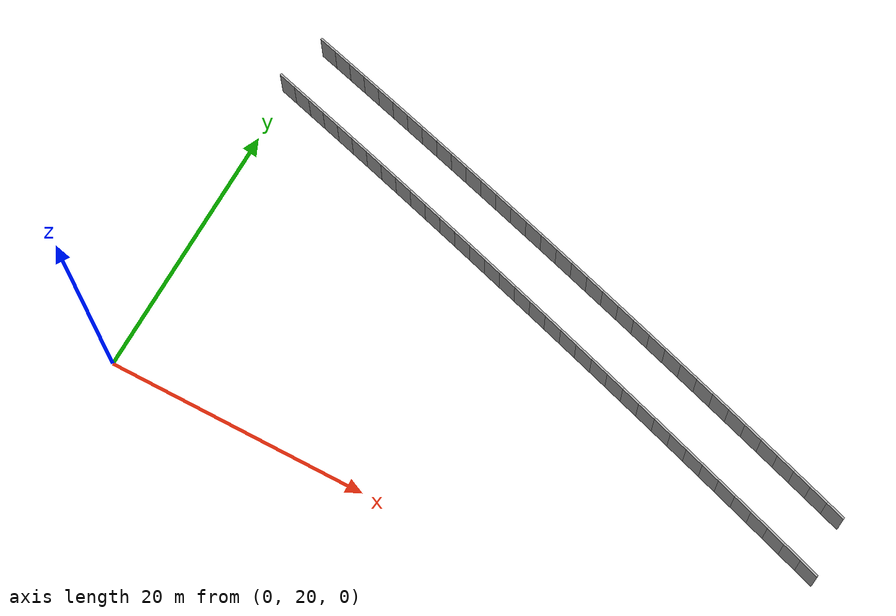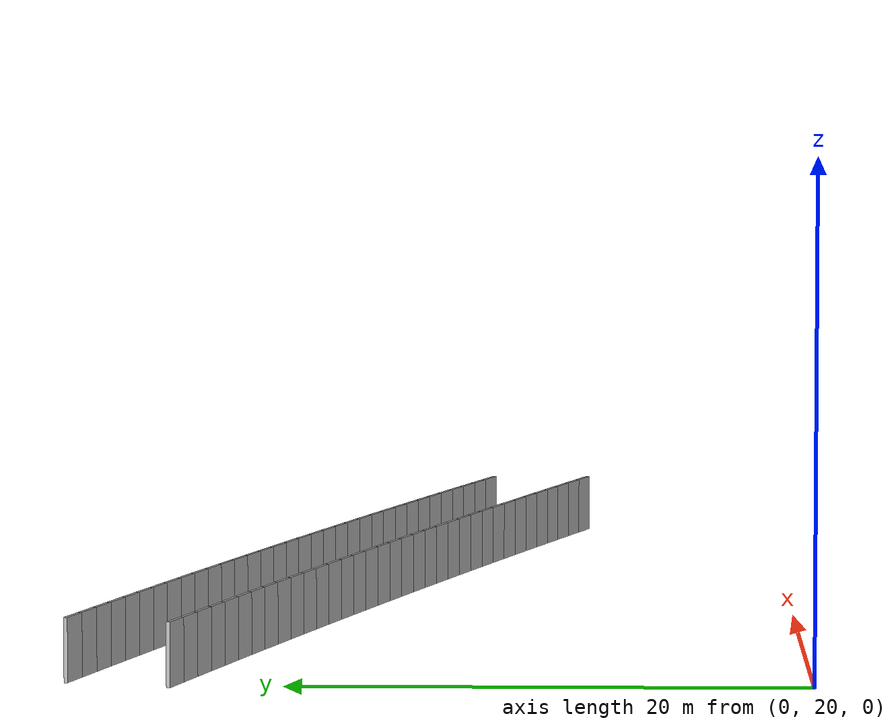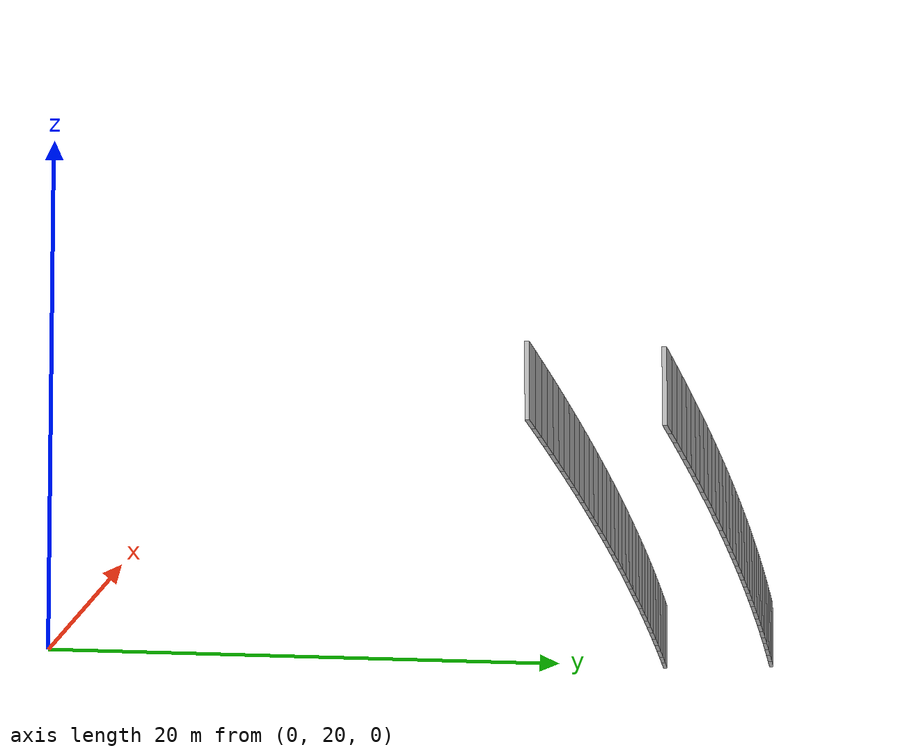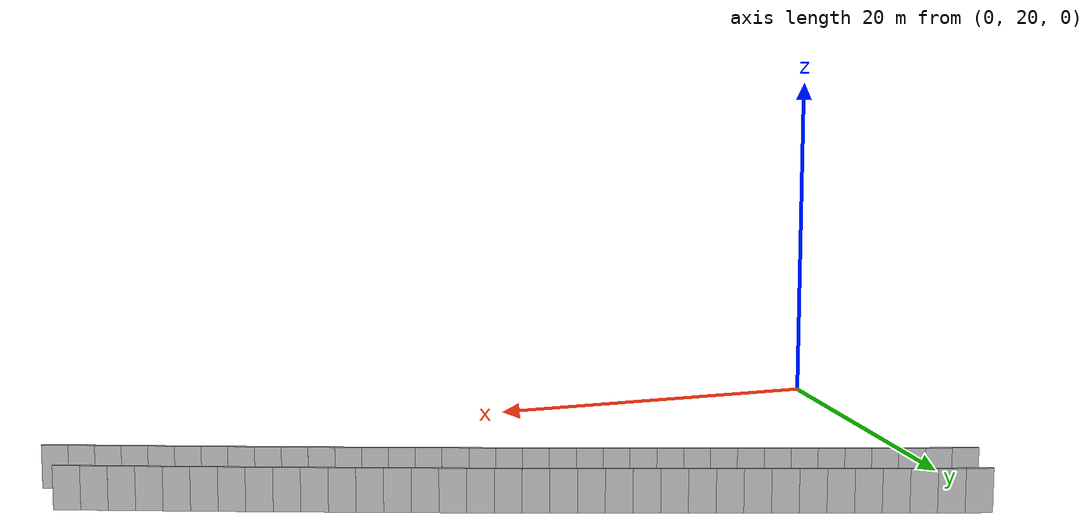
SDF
<?xml version="1.0" ?>
<sdf version="1.6">
  <model name="sps_3245">
    <pose frame="">0 0 0 0 -0 0</pose>
    <static>1</static>
    <self_collide>0</self_collide>
    <allow_auto_disable>0</allow_auto_disable>
    <link name="Wall10703">
      <kinematic>0</kinematic>
      <gravity>1</gravity>
      <self_collide>0</self_collide>
      <collision name="collision">
        <geometry>
          <box>
            <size>1.49653 0.15 2.5</size>
          </box>
        </geometry>
        <pose frame="">0 0 0 0 -0 0</pose>
      </collision>
      <visual name="visual">
        <geometry>
          <box>
            <size>1.49653 0.15 2.5</size>
          </box>
        </geometry>
        <pose frame="">0 0 0 0 -0 0</pose>
        <cast_shadows>1</cast_shadows>
        <transparency>0.0</transparency>
      </visual>
      <pose frame="">48.8043 28.7791 1.25 0 -0 2.80832</pose>
    </link>
    <link name="Wall10704">
      <kinematic>0</kinematic>
      <gravity>1</gravity>
      <self_collide>0</self_collide>
      <collision name="collision">
        <geometry>
          <box>
            <size>1.49641 0.15 2.5</size>
          </box>
        </geometry>
        <pose frame="">0 0 0 0 -0 0</pose>
      </collision>
      <visual name="visual">
        <geometry>
          <box>
            <size>1.49641 0.15 2.5</size>
          </box>
        </geometry>
        <pose frame="">0 0 0 0 -0 0</pose>
        <cast_shadows>1</cast_shadows>
        <transparency>0.0</transparency>
      </visual>
      <pose frame="">47.3899 29.2676 1.25 0 -0 2.80981</pose>
    </link>
    <link name="Wall10705">
      <kinematic>0</kinematic>
      <gravity>1</gravity>
      <self_collide>0</self_collide>
      <collision name="collision">
        <geometry>
          <box>
            <size>1.4966 0.15 2.5</size>
          </box>
        </geometry>
        <pose frame="">0 0 0 0 -0 0</pose>
      </collision>
      <visual name="visual">
        <geometry>
          <box>
            <size>1.4966 0.15 2.5</size>
          </box>
        </geometry>
        <pose frame="">0 0 0 0 -0 0</pose>
        <cast_shadows>1</cast_shadows>
        <transparency>0.0</transparency>
      </visual>
      <pose frame="">45.9746 29.7539 1.25 0 -0 2.81145</pose>
    </link>
    <link name="Wall10706">
      <kinematic>0</kinematic>
      <gravity>1</gravity>
      <self_collide>0</self_collide>
      <collision name="collision">
        <geometry>
          <box>
            <size>1.49654 0.15 2.5</size>
          </box>
        </geometry>
        <pose frame="">0 0 0 0 -0 0</pose>
      </collision>
      <visual name="visual">
        <geometry>
          <box>
            <size>1.49654 0.15 2.5</size>
          </box>
        </geometry>
        <pose frame="">0 0 0 0 -0 0</pose>
        <cast_shadows>1</cast_shadows>
        <transparency>0.0</transparency>
      </visual>
      <pose frame="">44.5585 30.238 1.25 0 -0 2.81294</pose>
    </link>
    <link name="Wall10707">
      <kinematic>0</kinematic>
      <gravity>1</gravity>
      <self_collide>0</self_collide>
      <collision name="collision">
        <geometry>
          <box>
            <size>1.49662 0.15 2.5</size>
          </box>
        </geometry>
        <pose frame="">0 0 0 0 -0 0</pose>
      </collision>
      <visual name="visual">
        <geometry>
          <box>
            <size>1.49662 0.15 2.5</size>
          </box>
        </geometry>
        <pose frame="">0 0 0 0 -0 0</pose>
        <cast_shadows>1</cast_shadows>
        <transparency>0.0</transparency>
      </visual>
      <pose frame="">43.1416 30.7198 1.25 0 -0 2.81468</pose>
    </link>
    <link name="Wall10708">
      <kinematic>0</kinematic>
      <gravity>1</gravity>
      <self_collide>0</self_collide>
      <collision name="collision">
        <geometry>
          <box>
            <size>1.49638 0.15 2.5</size>
          </box>
        </geometry>
        <pose frame="">0 0 0 0 -0 0</pose>
      </collision>
      <visual name="visual">
        <geometry>
          <box>
            <size>1.49638 0.15 2.5</size>
          </box>
        </geometry>
        <pose frame="">0 0 0 0 -0 0</pose>
        <cast_shadows>1</cast_shadows>
        <transparency>0.0</transparency>
      </visual>
      <pose frame="">41.724 31.1993 1.25 0 -0 2.81618</pose>
    </link>
    <link name="Wall10709">
      <kinematic>0</kinematic>
      <gravity>1</gravity>
      <self_collide>0</self_collide>
      <collision name="collision">
        <geometry>
          <box>
            <size>1.49649 0.15 2.5</size>
          </box>
        </geometry>
        <pose frame="">0 0 0 0 -0 0</pose>
      </collision>
      <visual name="visual">
        <geometry>
          <box>
            <size>1.49649 0.15 2.5</size>
          </box>
        </geometry>
        <pose frame="">0 0 0 0 -0 0</pose>
        <cast_shadows>1</cast_shadows>
        <transparency>0.0</transparency>
      </visual>
      <pose frame="">40.3057 31.6765 1.25 0 -0 2.81788</pose>
    </link>
    <link name="Wall10710">
      <kinematic>0</kinematic>
      <gravity>1</gravity>
      <self_collide>0</self_collide>
      <collision name="collision">
        <geometry>
          <box>
            <size>1.49648 0.15 2.5</size>
          </box>
        </geometry>
        <pose frame="">0 0 0 0 -0 0</pose>
      </collision>
      <visual name="visual">
        <geometry>
          <box>
            <size>1.49648 0.15 2.5</size>
          </box>
        </geometry>
        <pose frame="">0 0 0 0 -0 0</pose>
        <cast_shadows>1</cast_shadows>
        <transparency>0.0</transparency>
      </visual>
      <pose frame="">38.8866 32.1515 1.25 0 -0 2.8193</pose>
    </link>
    <link name="Wall10711">
      <kinematic>0</kinematic>
      <gravity>1</gravity>
      <self_collide>0</self_collide>
      <collision name="collision">
        <geometry>
          <box>
            <size>1.49672 0.15 2.5</size>
          </box>
        </geometry>
        <pose frame="">0 0 0 0 -0 0</pose>
      </collision>
      <visual name="visual">
        <geometry>
          <box>
            <size>1.49672 0.15 2.5</size>
          </box>
        </geometry>
        <pose frame="">0 0 0 0 -0 0</pose>
        <cast_shadows>1</cast_shadows>
        <transparency>0.0</transparency>
      </visual>
      <pose frame="">37.4666 32.6244 1.25 0 -0 2.8209</pose>
    </link>
    <link name="Wall10712">
      <kinematic>0</kinematic>
      <gravity>1</gravity>
      <self_collide>0</self_collide>
      <collision name="collision">
        <geometry>
          <box>
            <size>1.4963 0.15 2.5</size>
          </box>
        </geometry>
        <pose frame="">0 0 0 0 -0 0</pose>
      </collision>
      <visual name="visual">
        <geometry>
          <box>
            <size>1.4963 0.15 2.5</size>
          </box>
        </geometry>
        <pose frame="">0 0 0 0 -0 0</pose>
        <cast_shadows>1</cast_shadows>
        <transparency>0.0</transparency>
      </visual>
      <pose frame="">36.046 33.095 1.25 0 -0 2.82253</pose>
    </link>
    <link name="Wall10713">
      <kinematic>0</kinematic>
      <gravity>1</gravity>
      <self_collide>0</self_collide>
      <collision name="collision">
        <geometry>
          <box>
            <size>1.49656 0.15 2.5</size>
          </box>
        </geometry>
        <pose frame="">0 0 0 0 -0 0</pose>
      </collision>
      <visual name="visual">
        <geometry>
          <box>
            <size>1.49656 0.15 2.5</size>
          </box>
        </geometry>
        <pose frame="">0 0 0 0 -0 0</pose>
        <cast_shadows>1</cast_shadows>
        <transparency>0.0</transparency>
      </visual>
      <pose frame="">34.6247 33.5632 1.25 0 -0 2.82421</pose>
    </link>
    <link name="Wall10714">
      <kinematic>0</kinematic>
      <gravity>1</gravity>
      <self_collide>0</self_collide>
      <collision name="collision">
        <geometry>
          <box>
            <size>1.49643 0.15 2.5</size>
          </box>
        </geometry>
        <pose frame="">0 0 0 0 -0 0</pose>
      </collision>
      <visual name="visual">
        <geometry>
          <box>
            <size>1.49643 0.15 2.5</size>
          </box>
        </geometry>
        <pose frame="">0 0 0 0 -0 0</pose>
        <cast_shadows>1</cast_shadows>
        <transparency>0.0</transparency>
      </visual>
      <pose frame="">33.2027 34.0292 1.25 0 -0 2.82565</pose>
    </link>
    <link name="Wall10715">
      <kinematic>0</kinematic>
      <gravity>1</gravity>
      <self_collide>0</self_collide>
      <collision name="collision">
        <geometry>
          <box>
            <size>1.49653 0.15 2.5</size>
          </box>
        </geometry>
        <pose frame="">0 0 0 0 -0 0</pose>
      </collision>
      <visual name="visual">
        <geometry>
          <box>
            <size>1.49653 0.15 2.5</size>
          </box>
        </geometry>
        <pose frame="">0 0 0 0 -0 0</pose>
        <cast_shadows>1</cast_shadows>
        <transparency>0.0</transparency>
      </visual>
      <pose frame="">31.7799 34.493 1.25 0 -0 2.8273</pose>
    </link>
    <link name="Wall10716">
      <kinematic>0</kinematic>
      <gravity>1</gravity>
      <self_collide>0</self_collide>
      <collision name="collision">
        <geometry>
          <box>
            <size>1.49658 0.15 2.5</size>
          </box>
        </geometry>
        <pose frame="">0 0 0 0 -0 0</pose>
      </collision>
      <visual name="visual">
        <geometry>
          <box>
            <size>1.49658 0.15 2.5</size>
          </box>
        </geometry>
        <pose frame="">0 0 0 0 -0 0</pose>
        <cast_shadows>1</cast_shadows>
        <transparency>0.0</transparency>
      </visual>
      <pose frame="">30.3563 34.9545 1.25 0 -0 2.8289</pose>
    </link>
    <link name="Wall10717">
      <kinematic>0</kinematic>
      <gravity>1</gravity>
      <self_collide>0</self_collide>
      <collision name="collision">
        <geometry>
          <box>
            <size>1.49649 0.15 2.5</size>
          </box>
        </geometry>
        <pose frame="">0 0 0 0 -0 0</pose>
      </collision>
      <visual name="visual">
        <geometry>
          <box>
            <size>1.49649 0.15 2.5</size>
          </box>
        </geometry>
        <pose frame="">0 0 0 0 -0 0</pose>
        <cast_shadows>1</cast_shadows>
        <transparency>0.0</transparency>
      </visual>
      <pose frame="">28.9319 35.4138 1.25 0 -0 2.83042</pose>
    </link>
    <link name="Wall10718">
      <kinematic>0</kinematic>
      <gravity>1</gravity>
      <self_collide>0</self_collide>
      <collision name="collision">
        <geometry>
          <box>
            <size>1.49646 0.15 2.5</size>
          </box>
        </geometry>
        <pose frame="">0 0 0 0 -0 0</pose>
      </collision>
      <visual name="visual">
        <geometry>
          <box>
            <size>1.49646 0.15 2.5</size>
          </box>
        </geometry>
        <pose frame="">0 0 0 0 -0 0</pose>
        <cast_shadows>1</cast_shadows>
        <transparency>0.0</transparency>
      </visual>
      <pose frame="">27.5069 35.8708 1.25 0 -0 2.83208</pose>
    </link>
    <link name="Wall10719">
      <kinematic>0</kinematic>
      <gravity>1</gravity>
      <self_collide>0</self_collide>
      <collision name="collision">
        <geometry>
          <box>
            <size>1.49661 0.15 2.5</size>
          </box>
        </geometry>
        <pose frame="">0 0 0 0 -0 0</pose>
      </collision>
      <visual name="visual">
        <geometry>
          <box>
            <size>1.49661 0.15 2.5</size>
          </box>
        </geometry>
        <pose frame="">0 0 0 0 -0 0</pose>
        <cast_shadows>1</cast_shadows>
        <transparency>0.0</transparency>
      </visual>
      <pose frame="">26.0812 36.3255 1.25 0 -0 2.83365</pose>
    </link>
    <link name="Wall10720">
      <kinematic>0</kinematic>
      <gravity>1</gravity>
      <self_collide>0</self_collide>
      <collision name="collision">
        <geometry>
          <box>
            <size>1.49633 0.15 2.5</size>
          </box>
        </geometry>
        <pose frame="">0 0 0 0 -0 0</pose>
      </collision>
      <visual name="visual">
        <geometry>
          <box>
            <size>1.49633 0.15 2.5</size>
          </box>
        </geometry>
        <pose frame="">0 0 0 0 -0 0</pose>
        <cast_shadows>1</cast_shadows>
        <transparency>0.0</transparency>
      </visual>
      <pose frame="">24.6547 36.778 1.25 0 -0 2.83518</pose>
    </link>
    <link name="Wall10721">
      <kinematic>0</kinematic>
      <gravity>1</gravity>
      <self_collide>0</self_collide>
      <collision name="collision">
        <geometry>
          <box>
            <size>1.49656 0.15 2.5</size>
          </box>
        </geometry>
        <pose frame="">0 0 0 0 -0 0</pose>
      </collision>
      <visual name="visual">
        <geometry>
          <box>
            <size>1.49656 0.15 2.5</size>
          </box>
        </geometry>
        <pose frame="">0 0 0 0 -0 0</pose>
        <cast_shadows>1</cast_shadows>
        <transparency>0.0</transparency>
      </visual>
      <pose frame="">23.2277 37.2283 1.25 0 -0 2.83672</pose>
    </link>
    <link name="Wall10722">
      <kinematic>0</kinematic>
      <gravity>1</gravity>
      <self_collide>0</self_collide>
      <collision name="collision">
        <geometry>
          <box>
            <size>1.49647 0.15 2.5</size>
          </box>
        </geometry>
        <pose frame="">0 0 0 0 -0 0</pose>
      </collision>
      <visual name="visual">
        <geometry>
          <box>
            <size>1.49647 0.15 2.5</size>
          </box>
        </geometry>
        <pose frame="">0 0 0 0 -0 0</pose>
        <cast_shadows>1</cast_shadows>
        <transparency>0.0</transparency>
      </visual>
      <pose frame="">21.7998 37.6763 1.25 0 -0 2.83842</pose>
    </link>
    <link name="Wall10723">
      <kinematic>0</kinematic>
      <gravity>1</gravity>
      <self_collide>0</self_collide>
      <collision name="collision">
        <geometry>
          <box>
            <size>1.49659 0.15 2.5</size>
          </box>
        </geometry>
        <pose frame="">0 0 0 0 -0 0</pose>
      </collision>
      <visual name="visual">
        <geometry>
          <box>
            <size>1.49659 0.15 2.5</size>
          </box>
        </geometry>
        <pose frame="">0 0 0 0 -0 0</pose>
        <cast_shadows>1</cast_shadows>
        <transparency>0.0</transparency>
      </visual>
      <pose frame="">20.3711 38.122 1.25 0 -0 2.83994</pose>
    </link>
    <link name="Wall10724">
      <kinematic>0</kinematic>
      <gravity>1</gravity>
      <self_collide>0</self_collide>
      <collision name="collision">
        <geometry>
          <box>
            <size>1.49663 0.15 2.5</size>
          </box>
        </geometry>
        <pose frame="">0 0 0 0 -0 0</pose>
      </collision>
      <visual name="visual">
        <geometry>
          <box>
            <size>1.49663 0.15 2.5</size>
          </box>
        </geometry>
        <pose frame="">0 0 0 0 -0 0</pose>
        <cast_shadows>1</cast_shadows>
        <transparency>0.0</transparency>
      </visual>
      <pose frame="">18.9417 38.5654 1.25 0 -0 2.84165</pose>
    </link>
    <link name="Wall10725">
      <kinematic>0</kinematic>
      <gravity>1</gravity>
      <self_collide>0</self_collide>
      <collision name="collision">
        <geometry>
          <box>
            <size>1.49638 0.15 2.5</size>
          </box>
        </geometry>
        <pose frame="">0 0 0 0 -0 0</pose>
      </collision>
      <visual name="visual">
        <geometry>
          <box>
            <size>1.49638 0.15 2.5</size>
          </box>
        </geometry>
        <pose frame="">0 0 0 0 -0 0</pose>
        <cast_shadows>1</cast_shadows>
        <transparency>0.0</transparency>
      </visual>
      <pose frame="">17.5117 39.0066 1.25 0 -0 2.84301</pose>
    </link>
    <link name="Wall10726">
      <kinematic>0</kinematic>
      <gravity>1</gravity>
      <self_collide>0</self_collide>
      <collision name="collision">
        <geometry>
          <box>
            <size>1.49639 0.15 2.5</size>
          </box>
        </geometry>
        <pose frame="">0 0 0 0 -0 0</pose>
      </collision>
      <visual name="visual">
        <geometry>
          <box>
            <size>1.49639 0.15 2.5</size>
          </box>
        </geometry>
        <pose frame="">0 0 0 0 -0 0</pose>
        <cast_shadows>1</cast_shadows>
        <transparency>0.0</transparency>
      </visual>
      <pose frame="">16.0812 39.4455 1.25 0 -0 2.8448</pose>
    </link>
    <link name="Wall10727">
      <kinematic>0</kinematic>
      <gravity>1</gravity>
      <self_collide>0</self_collide>
      <collision name="collision">
        <geometry>
          <box>
            <size>1.4966 0.15 2.5</size>
          </box>
        </geometry>
        <pose frame="">0 0 0 0 -0 0</pose>
      </collision>
      <visual name="visual">
        <geometry>
          <box>
            <size>1.4966 0.15 2.5</size>
          </box>
        </geometry>
        <pose frame="">0 0 0 0 -0 0</pose>
        <cast_shadows>1</cast_shadows>
        <transparency>0.0</transparency>
      </visual>
      <pose frame="">14.6498 39.8821 1.25 0 -0 2.8463</pose>
    </link>
    <link name="Wall10728">
      <kinematic>0</kinematic>
      <gravity>1</gravity>
      <self_collide>0</self_collide>
      <collision name="collision">
        <geometry>
          <box>
            <size>1.49651 0.15 2.5</size>
          </box>
        </geometry>
        <pose frame="">0 0 0 0 -0 0</pose>
      </collision>
      <visual name="visual">
        <geometry>
          <box>
            <size>1.49651 0.15 2.5</size>
          </box>
        </geometry>
        <pose frame="">0 0 0 0 -0 0</pose>
        <cast_shadows>1</cast_shadows>
        <transparency>0.0</transparency>
      </visual>
      <pose frame="">13.2176 40.3165 1.25 0 -0 2.8479</pose>
    </link>
    <link name="Wall10729">
      <kinematic>0</kinematic>
      <gravity>1</gravity>
      <self_collide>0</self_collide>
      <collision name="collision">
        <geometry>
          <box>
            <size>1.49656 0.15 2.5</size>
          </box>
        </geometry>
        <pose frame="">0 0 0 0 -0 0</pose>
      </collision>
      <visual name="visual">
        <geometry>
          <box>
            <size>1.49656 0.15 2.5</size>
          </box>
        </geometry>
        <pose frame="">0 0 0 0 -0 0</pose>
        <cast_shadows>1</cast_shadows>
        <transparency>0.0</transparency>
      </visual>
      <pose frame="">11.7848 40.7486 1.25 0 -0 2.84948</pose>
    </link>
    <link name="Wall10730">
      <kinematic>0</kinematic>
      <gravity>1</gravity>
      <self_collide>0</self_collide>
      <collision name="collision">
        <geometry>
          <box>
            <size>1.49653 0.15 2.5</size>
          </box>
        </geometry>
        <pose frame="">0 0 0 0 -0 0</pose>
      </collision>
      <visual name="visual">
        <geometry>
          <box>
            <size>1.49653 0.15 2.5</size>
          </box>
        </geometry>
        <pose frame="">0 0 0 0 -0 0</pose>
        <cast_shadows>1</cast_shadows>
        <transparency>0.0</transparency>
      </visual>
      <pose frame="">10.3514 41.1785 1.25 0 -0 2.85097</pose>
    </link>
    <link name="Wall10731">
      <kinematic>0</kinematic>
      <gravity>1</gravity>
      <self_collide>0</self_collide>
      <collision name="collision">
        <geometry>
          <box>
            <size>1.49648 0.15 2.5</size>
          </box>
        </geometry>
        <pose frame="">0 0 0 0 -0 0</pose>
      </collision>
      <visual name="visual">
        <geometry>
          <box>
            <size>1.49648 0.15 2.5</size>
          </box>
        </geometry>
        <pose frame="">0 0 0 0 -0 0</pose>
        <cast_shadows>1</cast_shadows>
        <transparency>0.0</transparency>
      </visual>
      <pose frame="">8.91726 41.6061 1.25 0 -0 2.85266</pose>
    </link>
    <link name="Wall10732">
      <kinematic>0</kinematic>
      <gravity>1</gravity>
      <self_collide>0</self_collide>
      <collision name="collision">
        <geometry>
          <box>
            <size>1.49651 0.15 2.5</size>
          </box>
        </geometry>
        <pose frame="">0 0 0 0 -0 0</pose>
      </collision>
      <visual name="visual">
        <geometry>
          <box>
            <size>1.49651 0.15 2.5</size>
          </box>
        </geometry>
        <pose frame="">0 0 0 0 -0 0</pose>
        <cast_shadows>1</cast_shadows>
        <transparency>0.0</transparency>
      </visual>
      <pose frame="">7.48244 42.0313 1.25 0 -0 2.85432</pose>
    </link>
    <link name="Wall10733">
      <kinematic>0</kinematic>
      <gravity>1</gravity>
      <self_collide>0</self_collide>
      <collision name="collision">
        <geometry>
          <box>
            <size>1.49652 0.15 2.5</size>
          </box>
        </geometry>
        <pose frame="">0 0 0 0 -0 0</pose>
      </collision>
      <visual name="visual">
        <geometry>
          <box>
            <size>1.49652 0.15 2.5</size>
          </box>
        </geometry>
        <pose frame="">0 0 0 0 -0 0</pose>
        <cast_shadows>1</cast_shadows>
        <transparency>0.0</transparency>
      </visual>
      <pose frame="">6.04696 42.4543 1.25 0 -0 2.85573</pose>
    </link>
    <link name="Wall10734">
      <kinematic>0</kinematic>
      <gravity>1</gravity>
      <self_collide>0</self_collide>
      <collision name="collision">
        <geometry>
          <box>
            <size>1.49637 0.15 2.5</size>
          </box>
        </geometry>
        <pose frame="">0 0 0 0 -0 0</pose>
      </collision>
      <visual name="visual">
        <geometry>
          <box>
            <size>1.49637 0.15 2.5</size>
          </box>
        </geometry>
        <pose frame="">0 0 0 0 -0 0</pose>
        <cast_shadows>1</cast_shadows>
        <transparency>0.0</transparency>
      </visual>
      <pose frame="">4.61086 42.875 1.25 0 -0 2.85753</pose>
    </link>
    <link name="Wall10735">
      <kinematic>0</kinematic>
      <gravity>1</gravity>
      <self_collide>0</self_collide>
      <collision name="collision">
        <geometry>
          <box>
            <size>1.49659 0.15 2.5</size>
          </box>
        </geometry>
        <pose frame="">0 0 0 0 -0 0</pose>
      </collision>
      <visual name="visual">
        <geometry>
          <box>
            <size>1.49659 0.15 2.5</size>
          </box>
        </geometry>
        <pose frame="">0 0 0 0 -0 0</pose>
        <cast_shadows>1</cast_shadows>
        <transparency>0.0</transparency>
      </visual>
      <pose frame="">3.17406 43.2934 1.25 0 -0 2.85893</pose>
    </link>
    <link name="Wall10736">
      <kinematic>0</kinematic>
      <gravity>1</gravity>
      <self_collide>0</self_collide>
      <collision name="collision">
        <geometry>
          <box>
            <size>1.49649 0.15 2.5</size>
          </box>
        </geometry>
        <pose frame="">0 0 0 0 -0 0</pose>
      </collision>
      <visual name="visual">
        <geometry>
          <box>
            <size>1.49649 0.15 2.5</size>
          </box>
        </geometry>
        <pose frame="">0 0 0 0 -0 0</pose>
        <cast_shadows>1</cast_shadows>
        <transparency>0.0</transparency>
      </visual>
      <pose frame="">1.73656 43.7096 1.25 0 -0 2.86061</pose>
    </link>
    <link name="Wall10737">
      <kinematic>0</kinematic>
      <gravity>1</gravity>
      <self_collide>0</self_collide>
      <collision name="collision">
        <geometry>
          <box>
            <size>1.49654 0.15 2.5</size>
          </box>
        </geometry>
        <pose frame="">0 0 0 0 -0 0</pose>
      </collision>
      <visual name="visual">
        <geometry>
          <box>
            <size>1.49654 0.15 2.5</size>
          </box>
        </geometry>
        <pose frame="">0 0 0 0 -0 0</pose>
        <cast_shadows>1</cast_shadows>
        <transparency>0.0</transparency>
      </visual>
      <pose frame="">0.298454 44.1236 1.25 0 -0 2.86198</pose>
    </link>
    <link name="Wall11301">
      <kinematic>0</kinematic>
      <gravity>1</gravity>
      <self_collide>0</self_collide>
      <collision name="collision">
        <geometry>
          <box>
            <size>1.50318 0.15 2.5</size>
          </box>
        </geometry>
        <pose frame="">0 0 0 0 -0 0</pose>
      </collision>
      <visual name="visual">
        <geometry>
          <box>
            <size>1.50318 0.15 2.5</size>
          </box>
        </geometry>
        <pose frame="">0 0 0 0 -0 0</pose>
        <cast_shadows>1</cast_shadows>
        <transparency>0.0</transparency>
      </visual>
      <pose frame="">48.7378 33.1821 1.25 0 -0 2.80981</pose>
    </link>
    <link name="Wall11302">
      <kinematic>0</kinematic>
      <gravity>1</gravity>
      <self_collide>0</self_collide>
      <collision name="collision">
        <geometry>
          <box>
            <size>1.50296 0.15 2.5</size>
          </box>
        </geometry>
        <pose frame="">0 0 0 0 -0 0</pose>
      </collision>
      <visual name="visual">
        <geometry>
          <box>
            <size>1.50296 0.15 2.5</size>
          </box>
        </geometry>
        <pose frame="">0 0 0 0 -0 0</pose>
        <cast_shadows>1</cast_shadows>
        <transparency>0.0</transparency>
      </visual>
      <pose frame="">47.3163 33.6705 1.25 0 -0 2.81148</pose>
    </link>
    <link name="Wall11303">
      <kinematic>0</kinematic>
      <gravity>1</gravity>
      <self_collide>0</self_collide>
      <collision name="collision">
        <geometry>
          <box>
            <size>1.5032 0.15 2.5</size>
          </box>
        </geometry>
        <pose frame="">0 0 0 0 -0 0</pose>
      </collision>
      <visual name="visual">
        <geometry>
          <box>
            <size>1.5032 0.15 2.5</size>
          </box>
        </geometry>
        <pose frame="">0 0 0 0 -0 0</pose>
        <cast_shadows>1</cast_shadows>
        <transparency>0.0</transparency>
      </visual>
      <pose frame="">45.894 34.1566 1.25 0 -0 2.81304</pose>
    </link>
    <link name="Wall11304">
      <kinematic>0</kinematic>
      <gravity>1</gravity>
      <self_collide>0</self_collide>
      <collision name="collision">
        <geometry>
          <box>
            <size>1.50305 0.15 2.5</size>
          </box>
        </geometry>
        <pose frame="">0 0 0 0 -0 0</pose>
      </collision>
      <visual name="visual">
        <geometry>
          <box>
            <size>1.50305 0.15 2.5</size>
          </box>
        </geometry>
        <pose frame="">0 0 0 0 -0 0</pose>
        <cast_shadows>1</cast_shadows>
        <transparency>0.0</transparency>
      </visual>
      <pose frame="">44.4709 34.6405 1.25 0 -0 2.81459</pose>
    </link>
    <link name="Wall11305">
      <kinematic>0</kinematic>
      <gravity>1</gravity>
      <self_collide>0</self_collide>
      <collision name="collision">
        <geometry>
          <box>
            <size>1.5031 0.15 2.5</size>
          </box>
        </geometry>
        <pose frame="">0 0 0 0 -0 0</pose>
      </collision>
      <visual name="visual">
        <geometry>
          <box>
            <size>1.5031 0.15 2.5</size>
          </box>
        </geometry>
        <pose frame="">0 0 0 0 -0 0</pose>
        <cast_shadows>1</cast_shadows>
        <transparency>0.0</transparency>
      </visual>
      <pose frame="">43.0471 35.1222 1.25 0 -0 2.81614</pose>
    </link>
    <link name="Wall11306">
      <kinematic>0</kinematic>
      <gravity>1</gravity>
      <self_collide>0</self_collide>
      <collision name="collision">
        <geometry>
          <box>
            <size>1.50309 0.15 2.5</size>
          </box>
        </geometry>
        <pose frame="">0 0 0 0 -0 0</pose>
      </collision>
      <visual name="visual">
        <geometry>
          <box>
            <size>1.50309 0.15 2.5</size>
          </box>
        </geometry>
        <pose frame="">0 0 0 0 -0 0</pose>
        <cast_shadows>1</cast_shadows>
        <transparency>0.0</transparency>
      </visual>
      <pose frame="">41.6226 35.6016 1.25 0 -0 2.81781</pose>
    </link>
    <link name="Wall11307">
      <kinematic>0</kinematic>
      <gravity>1</gravity>
      <self_collide>0</self_collide>
      <collision name="collision">
        <geometry>
          <box>
            <size>1.50295 0.15 2.5</size>
          </box>
        </geometry>
        <pose frame="">0 0 0 0 -0 0</pose>
      </collision>
      <visual name="visual">
        <geometry>
          <box>
            <size>1.50295 0.15 2.5</size>
          </box>
        </geometry>
        <pose frame="">0 0 0 0 -0 0</pose>
        <cast_shadows>1</cast_shadows>
        <transparency>0.0</transparency>
      </visual>
      <pose frame="">40.1973 36.0787 1.25 0 -0 2.81937</pose>
    </link>
    <link name="Wall11308">
      <kinematic>0</kinematic>
      <gravity>1</gravity>
      <self_collide>0</self_collide>
      <collision name="collision">
        <geometry>
          <box>
            <size>1.50303 0.15 2.5</size>
          </box>
        </geometry>
        <pose frame="">0 0 0 0 -0 0</pose>
      </collision>
      <visual name="visual">
        <geometry>
          <box>
            <size>1.50303 0.15 2.5</size>
          </box>
        </geometry>
        <pose frame="">0 0 0 0 -0 0</pose>
        <cast_shadows>1</cast_shadows>
        <transparency>0.0</transparency>
      </visual>
      <pose frame="">38.7713 36.5536 1.25 0 -0 2.82088</pose>
    </link>
    <link name="Wall11309">
      <kinematic>0</kinematic>
      <gravity>1</gravity>
      <self_collide>0</self_collide>
      <collision name="collision">
        <geometry>
          <box>
            <size>1.50309 0.15 2.5</size>
          </box>
        </geometry>
        <pose frame="">0 0 0 0 -0 0</pose>
      </collision>
      <visual name="visual">
        <geometry>
          <box>
            <size>1.50309 0.15 2.5</size>
          </box>
        </geometry>
        <pose frame="">0 0 0 0 -0 0</pose>
        <cast_shadows>1</cast_shadows>
        <transparency>0.0</transparency>
      </visual>
      <pose frame="">37.3445 37.0263 1.25 0 -0 2.82244</pose>
    </link>
    <link name="Wall11310">
      <kinematic>0</kinematic>
      <gravity>1</gravity>
      <self_collide>0</self_collide>
      <collision name="collision">
        <geometry>
          <box>
            <size>1.50314 0.15 2.5</size>
          </box>
        </geometry>
        <pose frame="">0 0 0 0 -0 0</pose>
      </collision>
      <visual name="visual">
        <geometry>
          <box>
            <size>1.50314 0.15 2.5</size>
          </box>
        </geometry>
        <pose frame="">0 0 0 0 -0 0</pose>
        <cast_shadows>1</cast_shadows>
        <transparency>0.0</transparency>
      </visual>
      <pose frame="">35.9169 37.4967 1.25 0 -0 2.82416</pose>
    </link>
    <link name="Wall11311">
      <kinematic>0</kinematic>
      <gravity>1</gravity>
      <self_collide>0</self_collide>
      <collision name="collision">
        <geometry>
          <box>
            <size>1.50317 0.15 2.5</size>
          </box>
        </geometry>
        <pose frame="">0 0 0 0 -0 0</pose>
      </collision>
      <visual name="visual">
        <geometry>
          <box>
            <size>1.50317 0.15 2.5</size>
          </box>
        </geometry>
        <pose frame="">0 0 0 0 -0 0</pose>
        <cast_shadows>1</cast_shadows>
        <transparency>0.0</transparency>
      </visual>
      <pose frame="">34.4885 37.9648 1.25 0 -0 2.82566</pose>
    </link>
    <link name="Wall11312">
      <kinematic>0</kinematic>
      <gravity>1</gravity>
      <self_collide>0</self_collide>
      <collision name="collision">
        <geometry>
          <box>
            <size>1.50305 0.15 2.5</size>
          </box>
        </geometry>
        <pose frame="">0 0 0 0 -0 0</pose>
      </collision>
      <visual name="visual">
        <geometry>
          <box>
            <size>1.50305 0.15 2.5</size>
          </box>
        </geometry>
        <pose frame="">0 0 0 0 -0 0</pose>
        <cast_shadows>1</cast_shadows>
        <transparency>0.0</transparency>
      </visual>
      <pose frame="">33.0593 38.4306 1.25 0 -0 2.82734</pose>
    </link>
    <link name="Wall11313">
      <kinematic>0</kinematic>
      <gravity>1</gravity>
      <self_collide>0</self_collide>
      <collision name="collision">
        <geometry>
          <box>
            <size>1.50307 0.15 2.5</size>
          </box>
        </geometry>
        <pose frame="">0 0 0 0 -0 0</pose>
      </collision>
      <visual name="visual">
        <geometry>
          <box>
            <size>1.50307 0.15 2.5</size>
          </box>
        </geometry>
        <pose frame="">0 0 0 0 -0 0</pose>
        <cast_shadows>1</cast_shadows>
        <transparency>0.0</transparency>
      </visual>
      <pose frame="">31.6295 38.8941 1.25 0 -0 2.82888</pose>
    </link>
    <link name="Wall11314">
      <kinematic>0</kinematic>
      <gravity>1</gravity>
      <self_collide>0</self_collide>
      <collision name="collision">
        <geometry>
          <box>
            <size>1.50308 0.15 2.5</size>
          </box>
        </geometry>
        <pose frame="">0 0 0 0 -0 0</pose>
      </collision>
      <visual name="visual">
        <geometry>
          <box>
            <size>1.50308 0.15 2.5</size>
          </box>
        </geometry>
        <pose frame="">0 0 0 0 -0 0</pose>
        <cast_shadows>1</cast_shadows>
        <transparency>0.0</transparency>
      </visual>
      <pose frame="">30.199 39.3553 1.25 0 -0 2.83059</pose>
    </link>
    <link name="Wall11315">
      <kinematic>0</kinematic>
      <gravity>1</gravity>
      <self_collide>0</self_collide>
      <collision name="collision">
        <geometry>
          <box>
            <size>1.50312 0.15 2.5</size>
          </box>
        </geometry>
        <pose frame="">0 0 0 0 -0 0</pose>
      </collision>
      <visual name="visual">
        <geometry>
          <box>
            <size>1.50312 0.15 2.5</size>
          </box>
        </geometry>
        <pose frame="">0 0 0 0 -0 0</pose>
        <cast_shadows>1</cast_shadows>
        <transparency>0.0</transparency>
      </visual>
      <pose frame="">28.7677 39.8143 1.25 0 -0 2.83196</pose>
    </link>
    <link name="Wall11316">
      <kinematic>0</kinematic>
      <gravity>1</gravity>
      <self_collide>0</self_collide>
      <collision name="collision">
        <geometry>
          <box>
            <size>1.50309 0.15 2.5</size>
          </box>
        </geometry>
        <pose frame="">0 0 0 0 -0 0</pose>
      </collision>
      <visual name="visual">
        <geometry>
          <box>
            <size>1.50309 0.15 2.5</size>
          </box>
        </geometry>
        <pose frame="">0 0 0 0 -0 0</pose>
        <cast_shadows>1</cast_shadows>
        <transparency>0.0</transparency>
      </visual>
      <pose frame="">27.3357 40.2711 1.25 0 -0 2.83362</pose>
    </link>
    <link name="Wall11317">
      <kinematic>0</kinematic>
      <gravity>1</gravity>
      <self_collide>0</self_collide>
      <collision name="collision">
        <geometry>
          <box>
            <size>1.50294 0.15 2.5</size>
          </box>
        </geometry>
        <pose frame="">0 0 0 0 -0 0</pose>
      </collision>
      <visual name="visual">
        <geometry>
          <box>
            <size>1.50294 0.15 2.5</size>
          </box>
        </geometry>
        <pose frame="">0 0 0 0 -0 0</pose>
        <cast_shadows>1</cast_shadows>
        <transparency>0.0</transparency>
      </visual>
      <pose frame="">25.903 40.7255 1.25 0 -0 2.83529</pose>
    </link>
    <link name="Wall11318">
      <kinematic>0</kinematic>
      <gravity>1</gravity>
      <self_collide>0</self_collide>
      <collision name="collision">
        <geometry>
          <box>
            <size>1.50297 0.15 2.5</size>
          </box>
        </geometry>
        <pose frame="">0 0 0 0 -0 0</pose>
      </collision>
      <visual name="visual">
        <geometry>
          <box>
            <size>1.50297 0.15 2.5</size>
          </box>
        </geometry>
        <pose frame="">0 0 0 0 -0 0</pose>
        <cast_shadows>1</cast_shadows>
        <transparency>0.0</transparency>
      </visual>
      <pose frame="">24.4697 41.1777 1.25 0 -0 2.8367</pose>
    </link>
    <link name="Wall11319">
      <kinematic>0</kinematic>
      <gravity>1</gravity>
      <self_collide>0</self_collide>
      <collision name="collision">
        <geometry>
          <box>
            <size>1.50313 0.15 2.5</size>
          </box>
        </geometry>
        <pose frame="">0 0 0 0 -0 0</pose>
      </collision>
      <visual name="visual">
        <geometry>
          <box>
            <size>1.50313 0.15 2.5</size>
          </box>
        </geometry>
        <pose frame="">0 0 0 0 -0 0</pose>
        <cast_shadows>1</cast_shadows>
        <transparency>0.0</transparency>
      </visual>
      <pose frame="">23.0355 41.6277 1.25 0 -0 2.8384</pose>
    </link>
    <link name="Wall11320">
      <kinematic>0</kinematic>
      <gravity>1</gravity>
      <self_collide>0</self_collide>
      <collision name="collision">
        <geometry>
          <box>
            <size>1.50301 0.15 2.5</size>
          </box>
        </geometry>
        <pose frame="">0 0 0 0 -0 0</pose>
      </collision>
      <visual name="visual">
        <geometry>
          <box>
            <size>1.50301 0.15 2.5</size>
          </box>
        </geometry>
        <pose frame="">0 0 0 0 -0 0</pose>
        <cast_shadows>1</cast_shadows>
        <transparency>0.0</transparency>
      </visual>
      <pose frame="">21.6007 42.0753 1.25 0 -0 2.84003</pose>
    </link>
    <link name="Wall11321">
      <kinematic>0</kinematic>
      <gravity>1</gravity>
      <self_collide>0</self_collide>
      <collision name="collision">
        <geometry>
          <box>
            <size>1.50317 0.15 2.5</size>
          </box>
        </geometry>
        <pose frame="">0 0 0 0 -0 0</pose>
      </collision>
      <visual name="visual">
        <geometry>
          <box>
            <size>1.50317 0.15 2.5</size>
          </box>
        </geometry>
        <pose frame="">0 0 0 0 -0 0</pose>
        <cast_shadows>1</cast_shadows>
        <transparency>0.0</transparency>
      </visual>
      <pose frame="">20.1651 42.5206 1.25 0 -0 2.8416</pose>
    </link>
    <link name="Wall11322">
      <kinematic>0</kinematic>
      <gravity>1</gravity>
      <self_collide>0</self_collide>
      <collision name="collision">
        <geometry>
          <box>
            <size>1.50305 0.15 2.5</size>
          </box>
        </geometry>
        <pose frame="">0 0 0 0 -0 0</pose>
      </collision>
      <visual name="visual">
        <geometry>
          <box>
            <size>1.50305 0.15 2.5</size>
          </box>
        </geometry>
        <pose frame="">0 0 0 0 -0 0</pose>
        <cast_shadows>1</cast_shadows>
        <transparency>0.0</transparency>
      </visual>
      <pose frame="">18.7288 42.9637 1.25 0 -0 2.8431</pose>
    </link>
    <link name="Wall11323">
      <kinematic>0</kinematic>
      <gravity>1</gravity>
      <self_collide>0</self_collide>
      <collision name="collision">
        <geometry>
          <box>
            <size>1.50309 0.15 2.5</size>
          </box>
        </geometry>
        <pose frame="">0 0 0 0 -0 0</pose>
      </collision>
      <visual name="visual">
        <geometry>
          <box>
            <size>1.50309 0.15 2.5</size>
          </box>
        </geometry>
        <pose frame="">0 0 0 0 -0 0</pose>
        <cast_shadows>1</cast_shadows>
        <transparency>0.0</transparency>
      </visual>
      <pose frame="">17.2918 43.4045 1.25 0 -0 2.84481</pose>
    </link>
    <link name="Wall11324">
      <kinematic>0</kinematic>
      <gravity>1</gravity>
      <self_collide>0</self_collide>
      <collision name="collision">
        <geometry>
          <box>
            <size>1.50311 0.15 2.5</size>
          </box>
        </geometry>
        <pose frame="">0 0 0 0 -0 0</pose>
      </collision>
      <visual name="visual">
        <geometry>
          <box>
            <size>1.50311 0.15 2.5</size>
          </box>
        </geometry>
        <pose frame="">0 0 0 0 -0 0</pose>
        <cast_shadows>1</cast_shadows>
        <transparency>0.0</transparency>
      </visual>
      <pose frame="">15.8541 43.843 1.25 0 -0 2.8463</pose>
    </link>
    <link name="Wall11325">
      <kinematic>0</kinematic>
      <gravity>1</gravity>
      <self_collide>0</self_collide>
      <collision name="collision">
        <geometry>
          <box>
            <size>1.50298 0.15 2.5</size>
          </box>
        </geometry>
        <pose frame="">0 0 0 0 -0 0</pose>
      </collision>
      <visual name="visual">
        <geometry>
          <box>
            <size>1.50298 0.15 2.5</size>
          </box>
        </geometry>
        <pose frame="">0 0 0 0 -0 0</pose>
        <cast_shadows>1</cast_shadows>
        <transparency>0.0</transparency>
      </visual>
      <pose frame="">14.4157 44.2793 1.25 0 -0 2.84784</pose>
    </link>
    <link name="Wall11326">
      <kinematic>0</kinematic>
      <gravity>1</gravity>
      <self_collide>0</self_collide>
      <collision name="collision">
        <geometry>
          <box>
            <size>1.5031 0.15 2.5</size>
          </box>
        </geometry>
        <pose frame="">0 0 0 0 -0 0</pose>
      </collision>
      <visual name="visual">
        <geometry>
          <box>
            <size>1.5031 0.15 2.5</size>
          </box>
        </geometry>
        <pose frame="">0 0 0 0 -0 0</pose>
        <cast_shadows>1</cast_shadows>
        <transparency>0.0</transparency>
      </visual>
      <pose frame="">12.9767 44.7134 1.25 0 -0 2.84939</pose>
    </link>
    <link name="Wall11327">
      <kinematic>0</kinematic>
      <gravity>1</gravity>
      <self_collide>0</self_collide>
      <collision name="collision">
        <geometry>
          <box>
            <size>1.50301 0.15 2.5</size>
          </box>
        </geometry>
        <pose frame="">0 0 0 0 -0 0</pose>
      </collision>
      <visual name="visual">
        <geometry>
          <box>
            <size>1.50301 0.15 2.5</size>
          </box>
        </geometry>
        <pose frame="">0 0 0 0 -0 0</pose>
        <cast_shadows>1</cast_shadows>
        <transparency>0.0</transparency>
      </visual>
      <pose frame="">11.537 45.1452 1.25 0 -0 2.85103</pose>
    </link>
    <link name="Wall11328">
      <kinematic>0</kinematic>
      <gravity>1</gravity>
      <self_collide>0</self_collide>
      <collision name="collision">
        <geometry>
          <box>
            <size>1.50309 0.15 2.5</size>
          </box>
        </geometry>
        <pose frame="">0 0 0 0 -0 0</pose>
      </collision>
      <visual name="visual">
        <geometry>
          <box>
            <size>1.50309 0.15 2.5</size>
          </box>
        </geometry>
        <pose frame="">0 0 0 0 -0 0</pose>
        <cast_shadows>1</cast_shadows>
        <transparency>0.0</transparency>
      </visual>
      <pose frame="">10.0966 45.5746 1.25 0 -0 2.8527</pose>
    </link>
    <link name="Wall11329">
      <kinematic>0</kinematic>
      <gravity>1</gravity>
      <self_collide>0</self_collide>
      <collision name="collision">
        <geometry>
          <box>
            <size>1.50303 0.15 2.5</size>
          </box>
        </geometry>
        <pose frame="">0 0 0 0 -0 0</pose>
      </collision>
      <visual name="visual">
        <geometry>
          <box>
            <size>1.50303 0.15 2.5</size>
          </box>
        </geometry>
        <pose frame="">0 0 0 0 -0 0</pose>
        <cast_shadows>1</cast_shadows>
        <transparency>0.0</transparency>
      </visual>
      <pose frame="">8.65554 46.0017 1.25 0 -0 2.85425</pose>
    </link>
    <link name="Wall11330">
      <kinematic>0</kinematic>
      <gravity>1</gravity>
      <self_collide>0</self_collide>
      <collision name="collision">
        <geometry>
          <box>
            <size>1.50319 0.15 2.5</size>
          </box>
        </geometry>
        <pose frame="">0 0 0 0 -0 0</pose>
      </collision>
      <visual name="visual">
        <geometry>
          <box>
            <size>1.50319 0.15 2.5</size>
          </box>
        </geometry>
        <pose frame="">0 0 0 0 -0 0</pose>
        <cast_shadows>1</cast_shadows>
        <transparency>0.0</transparency>
      </visual>
      <pose frame="">7.21374 46.4266 1.25 0 -0 2.85576</pose>
    </link>
    <link name="Wall11331">
      <kinematic>0</kinematic>
      <gravity>1</gravity>
      <self_collide>0</self_collide>
      <collision name="collision">
        <geometry>
          <box>
            <size>1.50309 0.15 2.5</size>
          </box>
        </geometry>
        <pose frame="">0 0 0 0 -0 0</pose>
      </collision>
      <visual name="visual">
        <geometry>
          <box>
            <size>1.50309 0.15 2.5</size>
          </box>
        </geometry>
        <pose frame="">0 0 0 0 -0 0</pose>
        <cast_shadows>1</cast_shadows>
        <transparency>0.0</transparency>
      </visual>
      <pose frame="">5.77123 46.8492 1.25 0 -0 2.85744</pose>
    </link>
    <link name="Wall11332">
      <kinematic>0</kinematic>
      <gravity>1</gravity>
      <self_collide>0</self_collide>
      <collision name="collision">
        <geometry>
          <box>
            <size>1.503 0.15 2.5</size>
          </box>
        </geometry>
        <pose frame="">0 0 0 0 -0 0</pose>
      </collision>
      <visual name="visual">
        <geometry>
          <box>
            <size>1.503 0.15 2.5</size>
          </box>
        </geometry>
        <pose frame="">0 0 0 0 -0 0</pose>
        <cast_shadows>1</cast_shadows>
        <transparency>0.0</transparency>
      </visual>
      <pose frame="">4.32815 47.2695 1.25 0 -0 2.85894</pose>
    </link>
    <link name="Wall11333">
      <kinematic>0</kinematic>
      <gravity>1</gravity>
      <self_collide>0</self_collide>
      <collision name="collision">
        <geometry>
          <box>
            <size>1.50298 0.15 2.5</size>
          </box>
        </geometry>
        <pose frame="">0 0 0 0 -0 0</pose>
      </collision>
      <visual name="visual">
        <geometry>
          <box>
            <size>1.50298 0.15 2.5</size>
          </box>
        </geometry>
        <pose frame="">0 0 0 0 -0 0</pose>
        <cast_shadows>1</cast_shadows>
        <transparency>0.0</transparency>
      </visual>
      <pose frame="">2.88445 47.6875 1.25 0 -0 2.86059</pose>
    </link>
    <link name="Wall11334">
      <kinematic>0</kinematic>
      <gravity>1</gravity>
      <self_collide>0</self_collide>
      <collision name="collision">
        <geometry>
          <box>
            <size>1.50308 0.15 2.5</size>
          </box>
        </geometry>
        <pose frame="">0 0 0 0 -0 0</pose>
      </collision>
      <visual name="visual">
        <geometry>
          <box>
            <size>1.50308 0.15 2.5</size>
          </box>
        </geometry>
        <pose frame="">0 0 0 0 -0 0</pose>
        <cast_shadows>1</cast_shadows>
        <transparency>0.0</transparency>
      </visual>
      <pose frame="">1.44006 48.1032 1.25 0 -0 2.86213</pose>
    </link>
  </model>
</sdf>
